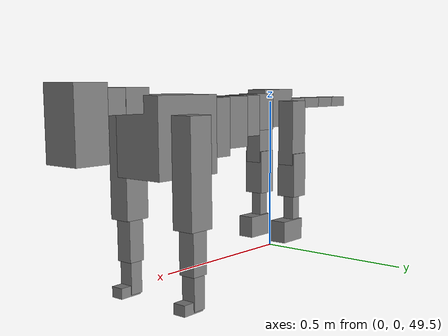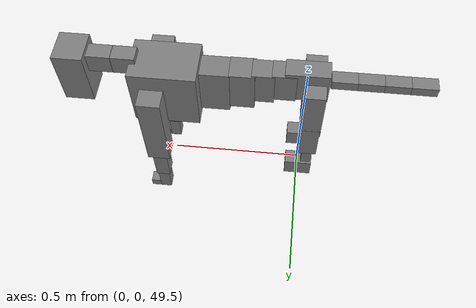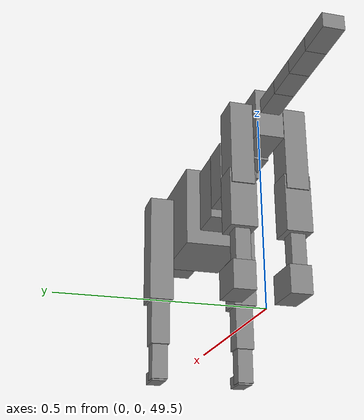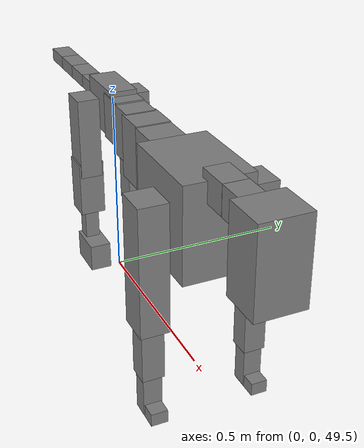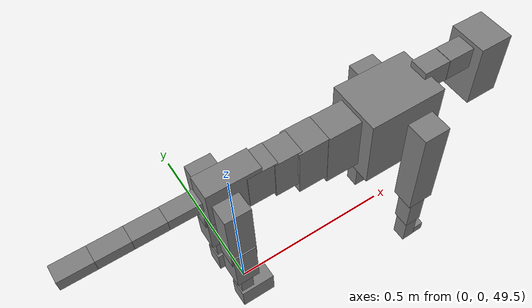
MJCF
<mujoco model="dog">

    <default>
        <joint armature="0.02" stiffness="1" damping="0.2" limited="true"/>
        <geom condim="3" friction="1 0.05 0.05" margin="0.01"/>
        <motor ctrllimited="true" ctrlrange="-1.0 1.0" forcelimited="true" gear="50"/>
    </default>

    <compiler inertiafromgeom="true" angle="radian"/>

    <option timestep="0.016" iterations="50" tolerance="1e-10" solver="Newton" jacobian="dense" cone="pyramidal"/>

    <size nconmax="20000" njmax="60000" nstack="5000000"/>
    <visual>
        <map force="0.1" zfar="30"/>
        <rgba haze="0.15 0.25 0.35 1"/>
        <quality shadowsize="2048"/>
        <global offwidth="800" offheight="800"/>
    </visual>

    <asset>
        <texture type="skybox" builtin="gradient" rgb1="0.3 0.5 0.7" rgb2="0 0 0" width="512" height="512"/>
        <texture name="texplane" type="2d" builtin="checker" rgb1=".2 .3 .4" rgb2=".1 0.15 0.2" width="512" height="512"
                 mark="cross" markrgb=".8 .8 .8"/>
        <texture name="texgeom" type="cube" builtin="flat" mark="cross" width="127" height="1278" rgb1="0.8 0.6 0.4"
                 rgb2="0.8 0.6 0.4" markrgb="1 1 1" random="0.01"/>

        <material name="matplane" reflectance="0.3" texture="texplane" texrepeat="1 1" texuniform="true"/>
        <material name="matgeom" texture="texgeom" texuniform="true" rgba="0.8 0.6 .4 1"/>
    </asset>

    <worldbody>
        <geom name="floor" pos="0 0 0" size="0 0 .25" type="plane" material="matplane" condim="3"/>

        <light directional="false" diffuse=".2 .2 .2" specular="0 0 0" pos="0 0 5" dir="0 0 -1" castshadow="false"/>
        <light mode="targetbodycom" target="torso" directional="false" diffuse=".8 .8 .8" specular="0.3 0.3 0.3"
               pos="0 0 4.0" dir="0 0 -1"/>

        <body name="root" pos="0 0 50">
            <freejoint name="root_1"/>
            <geom type="box" pos="0 0 -0.02" size="0.0774  0.0358  0.063" density="2030"/>

            <body name="spine1" pos="0.054 0 0">
                <joint name="spine1_y" axis="0 1 0" range="0 0.7" limited="true"/>
                <geom type="box" pos="0.02375 0 -0.03" size="0.04375  0.0375  0.05985" density="2030"/>

                <body name="spine2" pos="0.0612 0 0">
                    <joint name="spine2_y" axis="0 1 0" range="-0.15 0.15" limited="true"/>
                    <geom type="box" pos="0.03555  0  -0.04" size="0.04055  0.039  0.06615" density="2030"/>

                    <body name="spine3" pos="0.0730 0 0">
                        <joint name="spine3_y" axis="0 1 0" range="-0.15 0.15" limited="true"/>
                        <geom type="box" pos="0.03555  0  -0.057" size="0.04555  0.0445  0.081" density="2030"/>

                        <body name="spine4" pos="0.0780 0 0">
                            <joint name="spine4_y" axis="0 1 0" range="-0.15 0.15" limited="true"/>
                            <geom type="box" pos="0.05265  0  -0.07" size="0.05265  0.045  0.09135" density="2030"/>

                            <body name="torso" pos="0.1082 0 0">
                                <joint name="torso_y" axis="0 1 0" range="-0.15 0.15" limited="true"/>
                                <geom type="box" pos="0.11925  0  -0.085" size="0.11925  0.085  0.11745"
                                      density="2030"/>

                                <body name="neck1" pos="0.2160  0   0.0180">
                                    <joint name="neck1_y" axis="0 1 0" range="-1.2  -1" limited="true"/>
                                    <geom type="box" pos="0.0423  0  0" size="0.0423  0.03  0.036" density="2325"/>

                                    <body name="neck2" pos="0.0853  0  0">
                                        <joint name="neck2_y" axis="0 1 0" range="0.1  0" limited="true"/>
                                        <geom type="box" pos="0.0423  0  0" size="0.0423  0.03  0.036" density="2325"/>

                                        <body name="head" pos="0.0853  0  0">
                                            <joint name="head_y" axis="0 1 0" range="-0.3  -0.2" limited="true"/>
                                            <geom type="box" pos="0.0531  0  -0.055" size="0.0531  0.06  0.1044"
                                                  density="4030"/>

                                        </body>
                                    </body>
                                </body>

                                <body name="front_shoulder" pos="0.156  0   -0.0480">
                                    <joint name="front_shoulder_y" axis="0 1 0" range="-1 1.5" limited="true"/>
                                    <geom type="box" pos="0 0.13 -0.1332" size="0.0417  0.0356  0.1598" density="1158"/>
                                    <geom type="box" pos="0 -0.13 -0.1332" size="0.0417  0.0356  0.1598"
                                          density="1158"/>

                                    <body name="front_elbow" pos="0  0  -0.2663">
                                        <joint name="front_elbow_y" axis="0 1 0" range="-2 0" limited="true"/>
                                        <geom type="box" pos="0 0.13 -0.0784" size="0.0268  0.0274  0.0784"
                                              density="1081"/>
                                        <geom type="box" pos="0 -0.13 -0.0784" size="0.0268  0.0274  0.0784"
                                              density="1081"/>

                                        <body name="front_wrist" pos="0  0  -0.1568">
                                            <joint name="front_wrist_y" axis="0 1 0" range="-0.2 0" limited="true"/>
                                            <geom type="box" pos="0 0.13 -0.0436" size="0.0210  0.0233  0.0568"
                                                  density="1664"/>
                                            <geom type="box" pos="0 -0.13 -0.0436" size="0.0210  0.0233  0.0568"
                                                  density="1664"/>

                                            <body name="front_finger_end" pos="0  0  -0.0872">
                                                <joint name="front_finger_y" axis="0 1 0" range="-0.4 1"
                                                       limited="true"/>
                                                <geom type="box" pos="0.0207  0.13  -0.0016"
                                                      size="0.0380  0.0207  0.0166" density="1515"/>
                                                <geom type="box" pos="0.0207  -0.13  -0.0016"
                                                      size="0.0380  0.0207  0.0166" density="1515"/>

                                            </body>

                                        </body>
                                    </body>
                                </body>

                            </body>
                        </body>
                    </body>
                </body>
            </body>

            <body name="back_hip" pos="-0.03 0 -0.018">
                <joint name="back_hip_y" axis="0 1 0" range="-1.5 0.3" limited="true"/>
                <geom type="box" pos="0 0.07 -0.0854" size="0.0371  0.0291  0.1082" density="1154"/>
                <geom type="box" pos="0 -0.07 -0.0854" size="0.0371  0.0291  0.1082" density="1154"/>

                <body name="back_knee" pos="0  0  -0.1708">
                    <joint name="back_knee_y" axis="0 1 0" range="0 2.8" limited="true"/>
                    <geom type="box" pos="0 0.07 -0.0583" size="0.0338  0.0333  0.0738" density="1227"/>
                    <geom type="box" pos="0 -0.07 -0.0583" size="0.0338  0.0333  0.0738" density="1227"/>

                    <body name="back_ankle" pos="0  0  -0.1165">
                        <joint name="back_ankle_y" axis="0 1 0" range="-2.2 0" limited="true"/>
                        <geom type="box" pos="0 0.07 -0.0552" size="0.0190  0.0190  0.0665" density="1284"/>
                        <geom type="box" pos="0 -0.07 -0.0552" size="0.0190  0.0190  0.0665" density="1284"/>

                        <body name="back_toe_end" pos="0  0  -0.1105">
                            <joint name="back_toe_y" axis="0 1 0" range="-0.4 1" limited="true"/>
                            <geom type="box" pos="0.0279  0.07  -0.0211" size="0.0511  0.0279  0.0361" density="1515"/>
                            <geom type="box" pos="0.0279  -0.07  -0.0211" size="0.0511  0.0279  0.0361" density="1515"/>

                        </body>
                    </body>
                </body>
            </body>

            <body name="tail1" pos="-0.074 0 -0.006">
                <joint name="tail1_y" axis="0 1 0" range="-0.2 0.2" limited="true"/>
                <geom type="box" pos="-0.0536  0  0" size="0.045  0.025  0.0175" density="1587"/>

                <body name="tail2" pos="-0.09 0 0">
                    <joint name="tail2_y" axis="0 1 0" range="-0.2 0.2" limited="true"/>
                    <geom type="box" pos="-0.0536  0  0" size="0.045  0.025  0.0175" density="1587"/>

                    <body name="tail3" pos="-0.09 0 0">
                        <joint name="tail3_y" axis="0 1 0" range="-0.2 0.2" limited="true"/>
                        <geom type="box" pos="-0.0536  0  0" size="0.045  0.025  0.0175" density="1587"/>

                        <body name="tail4" pos="-0.09 0 0">
                            <joint name="tail4_y" axis="0 1 0" range="-0.2 0.2" limited="true"/>
                            <geom type="box" pos="-0.0536  0  0" size="0.045  0.025  0.0175" density="1587"/>

                        </body>
                    </body>
                </body>
            </body>
        </body>
    </worldbody>

    <actuator>
        <motor joint="spine1_y" forcerange="-150 150     "/>
        <motor joint="spine2_y" forcerange="-150 150     "/>
        <motor joint="spine3_y" forcerange="-150 150     "/>
        <motor joint="spine4_y" forcerange="-150 150     "/>
        <motor joint="torso_y" forcerange="-150 150     "/>
        <motor joint="neck1_y" forcerange="-100 100       "/>
        <motor joint="neck2_y" forcerange="-100 100       "/>
        <motor joint="head_y" forcerange="-150 150       "/>
        <motor joint="front_shoulder_y" forcerange="-194.96 142.38"/>
        <motor joint="front_elbow_y" forcerange="-119.69 179.50"/>
        <motor joint="front_wrist_y" forcerange="-115.22 71.27"/>
        <motor joint="front_finger_y" forcerange="-30.46 39.95"/>
        <motor joint="back_hip_y" forcerange="-339.48 248.57"/>
        <motor joint="back_knee_y" forcerange="-381.27 302.96"/>
        <motor joint="back_angle_y" forcerange="-50.01 154.13"/>
        <motor joint="back_toe_y" forcerange="-48.70 94.22"/>
        <motor joint="tail1_y" forcerange="-50 50     "/>
        <motor joint="tail2_y" forcerange="-50 50     "/>
        <motor joint="tail3_y" forcerange="-50 50     "/>
        <motor joint="tail4_y" forcerange="-50 50     "/>
    </actuator>
</mujoco>
